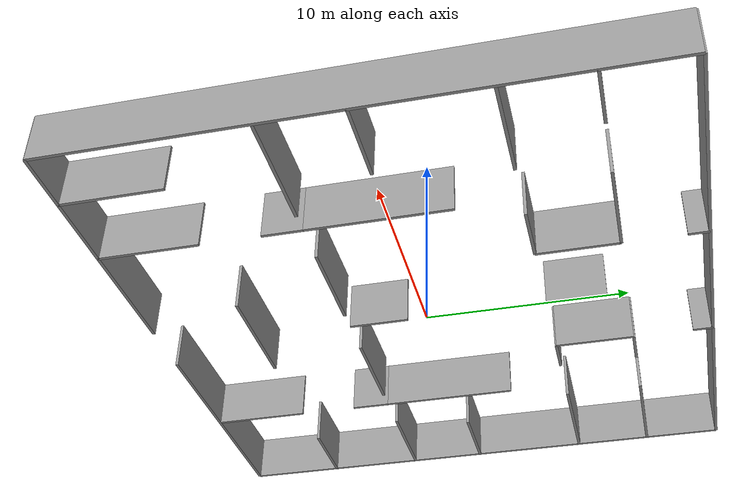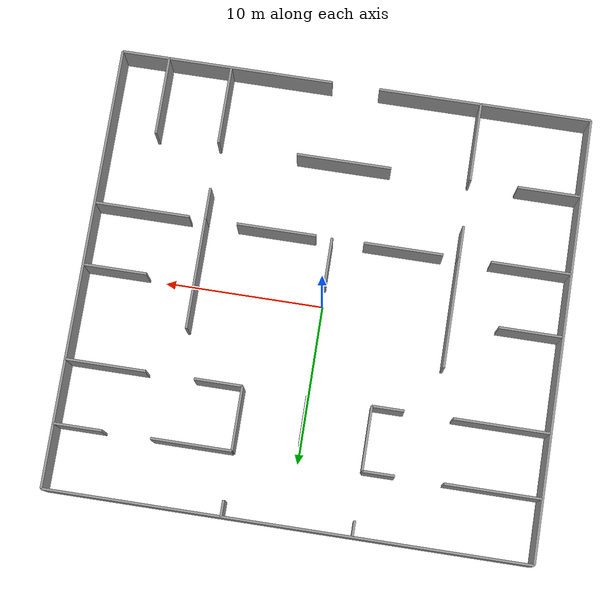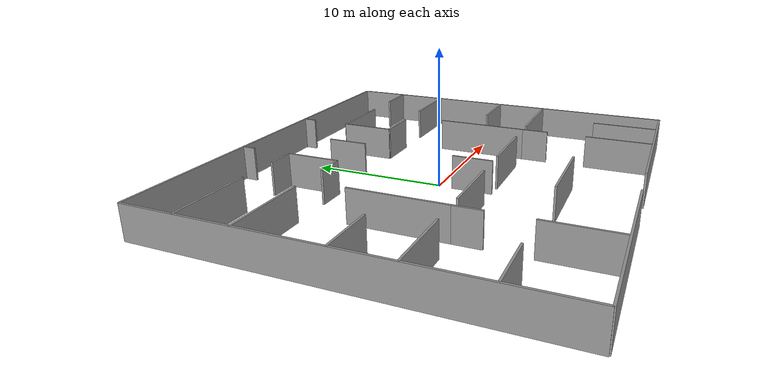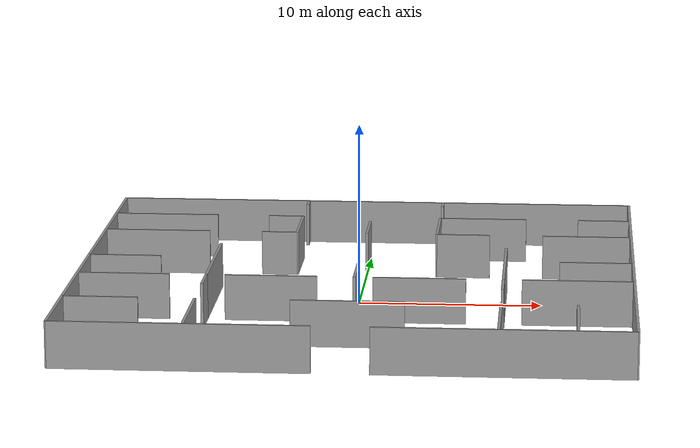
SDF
<?xml version='1.0'?>
<sdf version='1.11'>
  <model name='search_and_rescue_building'>
    <pose>0 0 0 0 0 0</pose>

    <!-- OUTER BOUNDARY WALLS                                         -->

    <link name='Wall_Out_N'>
      <collision name='Wall_Out_N_Collision'>
        <geometry>
          <box>
            <size>30 0.15 2.5</size>
          </box>
        </geometry>
        <pose>0 0 1.25 0 -0 0</pose>
      </collision>
      <visual name='Wall_Out_N_Visual'>
        <pose>0 0 1.25 0 -0 0</pose>
        <geometry>
          <box>
            <size>30 0.15 2.5</size>
          </box>
        </geometry>
        <material>
          <script>
            <uri>file://media/materials/scripts/gazebo.material</uri>
            <name>Gazebo/Grey</name>
          </script>
          <ambient>1 1 1 1</ambient>
        </material>
      </visual>
      <pose>0 14 0 0 -0 0</pose>
    </link>

    <!-- South outer wall, west of door: x=-15 to x=-1.5 (13.5 m) -->
    <link name='Wall_Out_S_W'>
      <collision name='Wall_Out_S_W_Collision'>
        <geometry>
          <box>
            <size>13.5 0.15 2.5</size>
          </box>
        </geometry>
        <pose>0 0 1.25 0 -0 0</pose>
      </collision>
      <visual name='Wall_Out_S_W_Visual'>
        <pose>0 0 1.25 0 -0 0</pose>
        <geometry>
          <box>
            <size>13.5 0.15 2.5</size>
          </box>
        </geometry>
        <material>
          <script>
            <uri>file://media/materials/scripts/gazebo.material</uri>
            <name>Gazebo/Grey</name>
          </script>
          <ambient>1 1 1 1</ambient>
        </material>
      </visual>
      <pose>-8.25 -14 0 0 -0 0</pose>
    </link>

    <!-- South outer wall, east of door: x=1.5 to x=15 (13.5 m) -->
    <link name='Wall_Out_S_E'>
      <collision name='Wall_Out_S_E_Collision'>
        <geometry>
          <box>
            <size>13.5 0.15 2.5</size>
          </box>
        </geometry>
        <pose>0 0 1.25 0 -0 0</pose>
      </collision>
      <visual name='Wall_Out_S_E_Visual'>
        <pose>0 0 1.25 0 -0 0</pose>
        <geometry>
          <box>
            <size>13.5 0.15 2.5</size>
          </box>
        </geometry>
        <material>
          <script>
            <uri>file://media/materials/scripts/gazebo.material</uri>
            <name>Gazebo/Grey</name>
          </script>
          <ambient>1 1 1 1</ambient>
        </material>
      </visual>
      <pose>8.25 -14 0 0 -0 0</pose>
    </link>

    <link name='Wall_Out_W'>
      <collision name='Wall_Out_W_Collision'>
        <geometry>
          <box>
            <size>28 0.15 2.5</size>
          </box>
        </geometry>
        <pose>0 0 1.25 0 -0 0</pose>
      </collision>
      <visual name='Wall_Out_W_Visual'>
        <pose>0 0 1.25 0 -0 0</pose>
        <geometry>
          <box>
            <size>28 0.15 2.5</size>
          </box>
        </geometry>
        <material>
          <script>
            <uri>file://media/materials/scripts/gazebo.material</uri>
            <name>Gazebo/Grey</name>
          </script>
          <ambient>1 1 1 1</ambient>
        </material>
      </visual>
      <pose>-15 0 0 0 -0 1.5708</pose>
    </link>

    <link name='Wall_Out_E'>
      <collision name='Wall_Out_E_Collision'>
        <geometry>
          <box>
            <size>28 0.15 2.5</size>
          </box>
        </geometry>
        <pose>0 0 1.25 0 -0 0</pose>
      </collision>
      <visual name='Wall_Out_E_Visual'>
        <pose>0 0 1.25 0 -0 0</pose>
        <geometry>
          <box>
            <size>28 0.15 2.5</size>
          </box>
        </geometry>
        <material>
          <script>
            <uri>file://media/materials/scripts/gazebo.material</uri>
            <name>Gazebo/Grey</name>
          </script>
          <ambient>1 1 1 1</ambient>
        </material>
      </visual>
      <pose>15 0 0 0 -0 1.5708</pose>
    </link>

    <!-- NORTH SECTION BOUNDARY (y=6 horizontal divider)              -->
    <!-- Rooms A and B are north of y=6; central atrium is south.     -->
    <!-- Gaps: x=-9 to x=-6 (Room A doorway), x=7 to x=10 (Room B)   -->
    <!-- Hallway (x=-4 to x=4) is open at y=6 (no wall).             -->

    <!-- Room A south wall, west segment: x=-15 to x=-9 (6 m) -->
    <link name='Wall_H6_RA_W'>
      <collision name='Wall_H6_RA_W_Collision'>
        <geometry>
          <box>
            <size>6 0.15 2.5</size>
          </box>
        </geometry>
        <pose>0 0 1.25 0 -0 0</pose>
      </collision>
      <visual name='Wall_H6_RA_W_Visual'>
        <pose>0 0 1.25 0 -0 0</pose>
        <geometry>
          <box>
            <size>6 0.15 2.5</size>
          </box>
        </geometry>
        <material>
          <script>
            <uri>file://media/materials/scripts/gazebo.material</uri>
            <name>Gazebo/Grey</name>
          </script>
          <ambient>1 1 1 1</ambient>
        </material>
      </visual>
      <pose>-12 6 0 0 -0 0</pose>
    </link>

    <!-- Room A south wall, east segment: x=-6 to x=-4 (2 m) -->
    <link name='Wall_H6_RA_E'>
      <collision name='Wall_H6_RA_E_Collision'>
        <geometry>
          <box>
            <size>2 0.15 2.5</size>
          </box>
        </geometry>
        <pose>0 0 1.25 0 -0 0</pose>
      </collision>
      <visual name='Wall_H6_RA_E_Visual'>
        <pose>0 0 1.25 0 -0 0</pose>
        <geometry>
          <box>
            <size>2 0.15 2.5</size>
          </box>
        </geometry>
        <material>
          <script>
            <uri>file://media/materials/scripts/gazebo.material</uri>
            <name>Gazebo/Grey</name>
          </script>
          <ambient>1 1 1 1</ambient>
        </material>
      </visual>
      <pose>-5 6 0 0 -0 0</pose>
    </link>

    <!-- Room B south wall, west segment: x=4 to x=7 (3 m) -->
    <link name='Wall_H6_RB_W'>
      <collision name='Wall_H6_RB_W_Collision'>
        <geometry>
          <box>
            <size>3 0.15 2.5</size>
          </box>
        </geometry>
        <pose>0 0 1.25 0 -0 0</pose>
      </collision>
      <visual name='Wall_H6_RB_W_Visual'>
        <pose>0 0 1.25 0 -0 0</pose>
        <geometry>
          <box>
            <size>3 0.15 2.5</size>
          </box>
        </geometry>
        <material>
          <script>
            <uri>file://media/materials/scripts/gazebo.material</uri>
            <name>Gazebo/Grey</name>
          </script>
          <ambient>1 1 1 1</ambient>
        </material>
      </visual>
      <pose>5.5 6 0 0 -0 0</pose>
    </link>

    <!-- Room B south wall, east segment: x=10 to x=15 (5 m) -->
    <link name='Wall_H6_RB_E'>
      <collision name='Wall_H6_RB_E_Collision'>
        <geometry>
          <box>
            <size>5 0.15 2.5</size>
          </box>
        </geometry>
        <pose>0 0 1.25 0 -0 0</pose>
      </collision>
      <visual name='Wall_H6_RB_E_Visual'>
        <pose>0 0 1.25 0 -0 0</pose>
        <geometry>
          <box>
            <size>5 0.15 2.5</size>
          </box>
        </geometry>
        <material>
          <script>
            <uri>file://media/materials/scripts/gazebo.material</uri>
            <name>Gazebo/Grey</name>
          </script>
          <ambient>1 1 1 1</ambient>
        </material>
      </visual>
      <pose>12.5 6 0 0 -0 0</pose>
    </link>

    <!-- VERTICAL DIVIDERS: Room A / Hallway (x=-4)                   -->
    <!-- and Hallway / Room B (x=4)                                   -->
    <!-- Door gap on each: y=10 to y=13 (3 m doorway)                -->

    <!-- x=-4 divider, bottom: y=6 to y=10 (4 m) -->
    <link name='Wall_V_neg4_bot'>
      <collision name='Wall_V_neg4_bot_Collision'>
        <geometry>
          <box>
            <size>4 0.15 2.5</size>
          </box>
        </geometry>
        <pose>0 0 1.25 0 -0 0</pose>
      </collision>
      <visual name='Wall_V_neg4_bot_Visual'>
        <pose>0 0 1.25 0 -0 0</pose>
        <geometry>
          <box>
            <size>4 0.15 2.5</size>
          </box>
        </geometry>
        <material>
          <script>
            <uri>file://media/materials/scripts/gazebo.material</uri>
            <name>Gazebo/Grey</name>
          </script>
          <ambient>1 1 1 1</ambient>
        </material>
      </visual>
      <pose>-4 8 0 0 -0 1.5708</pose>
    </link>

    <!-- x=-4 divider, top: y=13 to y=14 (1 m) -->
    <link name='Wall_V_neg4_top'>
      <collision name='Wall_V_neg4_top_Collision'>
        <geometry>
          <box>
            <size>1 0.15 2.5</size>
          </box>
        </geometry>
        <pose>0 0 1.25 0 -0 0</pose>
      </collision>
      <visual name='Wall_V_neg4_top_Visual'>
        <pose>0 0 1.25 0 -0 0</pose>
        <geometry>
          <box>
            <size>1 0.15 2.5</size>
          </box>
        </geometry>
        <material>
          <script>
            <uri>file://media/materials/scripts/gazebo.material</uri>
            <name>Gazebo/Grey</name>
          </script>
          <ambient>1 1 1 1</ambient>
        </material>
      </visual>
      <pose>-4 13.5 0 0 -0 1.5708</pose>
    </link>

    <!-- x=4 divider, bottom: y=6 to y=10 (4 m) -->
    <link name='Wall_V_4_bot'>
      <collision name='Wall_V_4_bot_Collision'>
        <geometry>
          <box>
            <size>4 0.15 2.5</size>
          </box>
        </geometry>
        <pose>0 0 1.25 0 -0 0</pose>
      </collision>
      <visual name='Wall_V_4_bot_Visual'>
        <pose>0 0 1.25 0 -0 0</pose>
        <geometry>
          <box>
            <size>4 0.15 2.5</size>
          </box>
        </geometry>
        <material>
          <script>
            <uri>file://media/materials/scripts/gazebo.material</uri>
            <name>Gazebo/Grey</name>
          </script>
          <ambient>1 1 1 1</ambient>
        </material>
      </visual>
      <pose>4 8 0 0 -0 1.5708</pose>
    </link>

    <!-- x=4 divider, top: y=13 to y=14 (1 m) -->
    <link name='Wall_V_4_top'>
      <collision name='Wall_V_4_top_Collision'>
        <geometry>
          <box>
            <size>1 0.15 2.5</size>
          </box>
        </geometry>
        <pose>0 0 1.25 0 -0 0</pose>
      </collision>
      <visual name='Wall_V_4_top_Visual'>
        <pose>0 0 1.25 0 -0 0</pose>
        <geometry>
          <box>
            <size>1 0.15 2.5</size>
          </box>
        </geometry>
        <material>
          <script>
            <uri>file://media/materials/scripts/gazebo.material</uri>
            <name>Gazebo/Grey</name>
          </script>
          <ambient>1 1 1 1</ambient>
        </material>
      </visual>
      <pose>4 13.5 0 0 -0 1.5708</pose>
    </link>

    <!-- ROOM A INTERNAL WALLS (Large Entry Hall, NW)                 -->
    <!-- Horizontal divider at y=10 with gap x=-9 to x=-6            -->
    <!-- Forces an L-shaped navigation path inside Room A             -->

    <!-- Room A internal, west segment: y=10, x=-15 to x=-9 (6 m) -->
    <link name='Wall_RA_1_W'>
      <collision name='Wall_RA_1_W_Collision'>
        <geometry>
          <box>
            <size>6 0.15 2.5</size>
          </box>
        </geometry>
        <pose>0 0 1.25 0 -0 0</pose>
      </collision>
      <visual name='Wall_RA_1_W_Visual'>
        <pose>0 0 1.25 0 -0 0</pose>
        <geometry>
          <box>
            <size>6 0.15 2.5</size>
          </box>
        </geometry>
        <material>
          <script>
            <uri>file://media/materials/scripts/gazebo.material</uri>
            <name>Gazebo/Grey</name>
          </script>
          <ambient>1 1 1 1</ambient>
        </material>
      </visual>
      <pose>-12 10 0 0 -0 0</pose>
    </link>

    <!-- Room A internal, east segment: y=10, x=-6 to x=-4 (2 m) -->
    <link name='Wall_RA_1_E'>
      <collision name='Wall_RA_1_E_Collision'>
        <geometry>
          <box>
            <size>2 0.15 2.5</size>
          </box>
        </geometry>
        <pose>0 0 1.25 0 -0 0</pose>
      </collision>
      <visual name='Wall_RA_1_E_Visual'>
        <pose>0 0 1.25 0 -0 0</pose>
        <geometry>
          <box>
            <size>2 0.15 2.5</size>
          </box>
        </geometry>
        <material>
          <script>
            <uri>file://media/materials/scripts/gazebo.material</uri>
            <name>Gazebo/Grey</name>
          </script>
          <ambient>1 1 1 1</ambient>
        </material>
      </visual>
      <pose>-5 10 0 0 -0 0</pose>
    </link>

    <!-- ROOM B INTERNAL WALLS (Medium Office, NE)                    -->
    <!-- Horizontal divider at y=10 with gap x=9 to x=12             -->

    <!-- Room B internal, west segment: y=10, x=4 to x=9 (5 m) -->
    <link name='Wall_RB_1_W'>
      <collision name='Wall_RB_1_W_Collision'>
        <geometry>
          <box>
            <size>5 0.15 2.5</size>
          </box>
        </geometry>
        <pose>0 0 1.25 0 -0 0</pose>
      </collision>
      <visual name='Wall_RB_1_W_Visual'>
        <pose>0 0 1.25 0 -0 0</pose>
        <geometry>
          <box>
            <size>5 0.15 2.5</size>
          </box>
        </geometry>
        <material>
          <script>
            <uri>file://media/materials/scripts/gazebo.material</uri>
            <name>Gazebo/Grey</name>
          </script>
          <ambient>1 1 1 1</ambient>
        </material>
      </visual>
      <pose>6.5 10 0 0 -0 0</pose>
    </link>

    <!-- Room B internal, east segment: y=10, x=12 to x=15 (3 m) -->
    <link name='Wall_RB_1_E'>
      <collision name='Wall_RB_1_E_Collision'>
        <geometry>
          <box>
            <size>3 0.15 2.5</size>
          </box>
        </geometry>
        <pose>0 0 1.25 0 -0 0</pose>
      </collision>
      <visual name='Wall_RB_1_E_Visual'>
        <pose>0 0 1.25 0 -0 0</pose>
        <geometry>
          <box>
            <size>3 0.15 2.5</size>
          </box>
        </geometry>
        <material>
          <script>
            <uri>file://media/materials/scripts/gazebo.material</uri>
            <name>Gazebo/Grey</name>
          </script>
          <ambient>1 1 1 1</ambient>
        </material>
      </visual>
      <pose>13.5 10 0 0 -0 0</pose>
    </link>

    <!-- NORTH HALLWAY INTERNAL WALL                                  -->
    <!-- Vertical stub at x=0, y=6 to y=9 (3 m)                      -->
    <!-- Forces the robot to choose left or right in the hallway      -->

    <link name='Wall_Hall_1'>
      <collision name='Wall_Hall_1_Collision'>
        <geometry>
          <box>
            <size>3 0.15 2.5</size>
          </box>
        </geometry>
        <pose>0 0 1.25 0 -0 0</pose>
      </collision>
      <visual name='Wall_Hall_1_Visual'>
        <pose>0 0 1.25 0 -0 0</pose>
        <geometry>
          <box>
            <size>3 0.15 2.5</size>
          </box>
        </geometry>
        <material>
          <script>
            <uri>file://media/materials/scripts/gazebo.material</uri>
            <name>Gazebo/Grey</name>
          </script>
          <ambient>1 1 1 1</ambient>
        </material>
      </visual>
      <pose>0 7.5 0 0 -0 1.5708</pose>
    </link>

    <!-- CENTRAL / SOUTH BOUNDARY (y=-4 horizontal divider)           -->
    <!-- Separates large central atrium from south rooms.             -->
    <!-- Gaps (doorways): x=-10 to x=-7, x=-2 to x=1, x=6 to x=9   -->

    <!-- Segment 1: x=-15 to x=-10 (5 m) -->
    <link name='Wall_H_neg4_1'>
      <collision name='Wall_H_neg4_1_Collision'>
        <geometry>
          <box>
            <size>5 0.15 2.5</size>
          </box>
        </geometry>
        <pose>0 0 1.25 0 -0 0</pose>
      </collision>
      <visual name='Wall_H_neg4_1_Visual'>
        <pose>0 0 1.25 0 -0 0</pose>
        <geometry>
          <box>
            <size>5 0.15 2.5</size>
          </box>
        </geometry>
        <material>
          <script>
            <uri>file://media/materials/scripts/gazebo.material</uri>
            <name>Gazebo/Grey</name>
          </script>
          <ambient>1 1 1 1</ambient>
        </material>
      </visual>
      <pose>-12.5 -4 0 0 -0 0</pose>
    </link>

    <!-- Segment 2: x=-7 to x=-2 (5 m) -->
    <link name='Wall_H_neg4_2'>
      <collision name='Wall_H_neg4_2_Collision'>
        <geometry>
          <box>
            <size>5 0.15 2.5</size>
          </box>
        </geometry>
        <pose>0 0 1.25 0 -0 0</pose>
      </collision>
      <visual name='Wall_H_neg4_2_Visual'>
        <pose>0 0 1.25 0 -0 0</pose>
        <geometry>
          <box>
            <size>5 0.15 2.5</size>
          </box>
        </geometry>
        <material>
          <script>
            <uri>file://media/materials/scripts/gazebo.material</uri>
            <name>Gazebo/Grey</name>
          </script>
          <ambient>1 1 1 1</ambient>
        </material>
      </visual>
      <pose>-4.5 -4 0 0 -0 0</pose>
    </link>

    <!-- Segment 3: x=1 to x=6 (5 m) -->
    <link name='Wall_H_neg4_3'>
      <collision name='Wall_H_neg4_3_Collision'>
        <geometry>
          <box>
            <size>5 0.15 2.5</size>
          </box>
        </geometry>
        <pose>0 0 1.25 0 -0 0</pose>
      </collision>
      <visual name='Wall_H_neg4_3_Visual'>
        <pose>0 0 1.25 0 -0 0</pose>
        <geometry>
          <box>
            <size>5 0.15 2.5</size>
          </box>
        </geometry>
        <material>
          <script>
            <uri>file://media/materials/scripts/gazebo.material</uri>
            <name>Gazebo/Grey</name>
          </script>
          <ambient>1 1 1 1</ambient>
        </material>
      </visual>
      <pose>3.5 -4 0 0 -0 0</pose>
    </link>

    <!-- Segment 4: x=9 to x=15 (6 m) -->
    <link name='Wall_H_neg4_4'>
      <collision name='Wall_H_neg4_4_Collision'>
        <geometry>
          <box>
            <size>6 0.15 2.5</size>
          </box>
        </geometry>
        <pose>0 0 1.25 0 -0 0</pose>
      </collision>
      <visual name='Wall_H_neg4_4_Visual'>
        <pose>0 0 1.25 0 -0 0</pose>
        <geometry>
          <box>
            <size>6 0.15 2.5</size>
          </box>
        </geometry>
        <material>
          <script>
            <uri>file://media/materials/scripts/gazebo.material</uri>
            <name>Gazebo/Grey</name>
          </script>
          <ambient>1 1 1 1</ambient>
        </material>
      </visual>
      <pose>12 -4 0 0 -0 0</pose>
    </link>

    <!-- CENTRAL ATRIUM INTERNAL WALLS                                -->
    <!-- Two vertical walls at x=-8 and x=8 divide the atrium into   -->
    <!-- a wide central space and two narrow side alcoves.            -->
    <!-- Each vertical wall runs y=-4 to y=3 with a 3 m gap (y=3-6). -->
    <!-- Horizontal stubs create dead-end alcoves on west and east.   -->
    <!-- A short central vertical stub forces a path split.           -->

    <!-- West internal vertical wall: x=-8, y=-4 to y=3 (7 m) -->
    <link name='Wall_CA_W_vert'>
      <collision name='Wall_CA_W_vert_Collision'>
        <geometry>
          <box>
            <size>7 0.15 2.5</size>
          </box>
        </geometry>
        <pose>0 0 1.25 0 -0 0</pose>
      </collision>
      <visual name='Wall_CA_W_vert_Visual'>
        <pose>0 0 1.25 0 -0 0</pose>
        <geometry>
          <box>
            <size>7 0.15 2.5</size>
          </box>
        </geometry>
        <material>
          <script>
            <uri>file://media/materials/scripts/gazebo.material</uri>
            <name>Gazebo/Grey</name>
          </script>
          <ambient>1 1 1 1</ambient>
        </material>
      </visual>
      <pose>-8 -0.5 0 0 -0 1.5708</pose>
    </link>

    <!-- East internal vertical wall: x=8, y=-4 to y=3 (7 m) -->
    <link name='Wall_CA_E_vert'>
      <collision name='Wall_CA_E_vert_Collision'>
        <geometry>
          <box>
            <size>7 0.15 2.5</size>
          </box>
        </geometry>
        <pose>0 0 1.25 0 -0 0</pose>
      </collision>
      <visual name='Wall_CA_E_vert_Visual'>
        <pose>0 0 1.25 0 -0 0</pose>
        <geometry>
          <box>
            <size>7 0.15 2.5</size>
          </box>
        </geometry>
        <material>
          <script>
            <uri>file://media/materials/scripts/gazebo.material</uri>
            <name>Gazebo/Grey</name>
          </script>
          <ambient>1 1 1 1</ambient>
        </material>
      </visual>
      <pose>8 -0.5 0 0 -0 1.5708</pose>
    </link>

    <!-- West alcove horizontal wall: y=0, x=-15 to x=-11 (4 m) -->
    <!-- Dead end in the western side alcove -->
    <link name='Wall_CA_SubW_H'>
      <collision name='Wall_CA_SubW_H_Collision'>
        <geometry>
          <box>
            <size>4 0.15 2.5</size>
          </box>
        </geometry>
        <pose>0 0 1.25 0 -0 0</pose>
      </collision>
      <visual name='Wall_CA_SubW_H_Visual'>
        <pose>0 0 1.25 0 -0 0</pose>
        <geometry>
          <box>
            <size>4 0.15 2.5</size>
          </box>
        </geometry>
        <material>
          <script>
            <uri>file://media/materials/scripts/gazebo.material</uri>
            <name>Gazebo/Grey</name>
          </script>
          <ambient>1 1 1 1</ambient>
        </material>
      </visual>
      <pose>-13 0 0 0 -0 0</pose>
    </link>

    <!-- East alcove horizontal wall: y=0, x=11 to x=15 (4 m) -->
    <!-- Dead end in the eastern side alcove -->
    <link name='Wall_CA_SubE_H'>
      <collision name='Wall_CA_SubE_H_Collision'>
        <geometry>
          <box>
            <size>4 0.15 2.5</size>
          </box>
        </geometry>
        <pose>0 0 1.25 0 -0 0</pose>
      </collision>
      <visual name='Wall_CA_SubE_H_Visual'>
        <pose>0 0 1.25 0 -0 0</pose>
        <geometry>
          <box>
            <size>4 0.15 2.5</size>
          </box>
        </geometry>
        <material>
          <script>
            <uri>file://media/materials/scripts/gazebo.material</uri>
            <name>Gazebo/Grey</name>
          </script>
          <ambient>1 1 1 1</ambient>
        </material>
      </visual>
      <pose>13 0 0 0 -0 0</pose>
    </link>

    <!-- Central atrium vertical stub: x=0, y=-4 to y=-1 (3 m) -->
    <!-- Splits the lower atrium into two lanes -->
    <link name='Wall_CA_Center_V'>
      <collision name='Wall_CA_Center_V_Collision'>
        <geometry>
          <box>
            <size>3 0.15 2.5</size>
          </box>
        </geometry>
        <pose>0 0 1.25 0 -0 0</pose>
      </collision>
      <visual name='Wall_CA_Center_V_Visual'>
        <pose>0 0 1.25 0 -0 0</pose>
        <geometry>
          <box>
            <size>3 0.15 2.5</size>
          </box>
        </geometry>
        <material>
          <script>
            <uri>file://media/materials/scripts/gazebo.material</uri>
            <name>Gazebo/Grey</name>
          </script>
          <ambient>1 1 1 1</ambient>
        </material>
      </visual>
      <pose>0 -2.5 0 0 -0 1.5708</pose>
    </link>

    <!-- SOUTH SECTION VERTICAL DIVIDERS (x=-8 and x=8)              -->
    <!-- Room C (SW) | Bottom Corridor | Room E (SE)                  -->
    <!-- Each divider has a 3 m gap from y=-9 to y=-6 (doorway)       -->

    <!-- x=-8 south divider, bottom: y=-14 to y=-9 (5 m) -->
    <link name='Wall_Vs_neg8_bot'>
      <collision name='Wall_Vs_neg8_bot_Collision'>
        <geometry>
          <box>
            <size>5 0.15 2.5</size>
          </box>
        </geometry>
        <pose>0 0 1.25 0 -0 0</pose>
      </collision>
      <visual name='Wall_Vs_neg8_bot_Visual'>
        <pose>0 0 1.25 0 -0 0</pose>
        <geometry>
          <box>
            <size>5 0.15 2.5</size>
          </box>
        </geometry>
        <material>
          <script>
            <uri>file://media/materials/scripts/gazebo.material</uri>
            <name>Gazebo/Grey</name>
          </script>
          <ambient>1 1 1 1</ambient>
        </material>
      </visual>
      <pose>-8 -11.5 0 0 -0 1.5708</pose>
    </link>

    <!-- x=-8 south divider, top: y=-6 to y=-4 (2 m) -->
    <link name='Wall_Vs_neg8_top'>
      <collision name='Wall_Vs_neg8_top_Collision'>
        <geometry>
          <box>
            <size>2 0.15 2.5</size>
          </box>
        </geometry>
        <pose>0 0 1.25 0 -0 0</pose>
      </collision>
      <visual name='Wall_Vs_neg8_top_Visual'>
        <pose>0 0 1.25 0 -0 0</pose>
        <geometry>
          <box>
            <size>2 0.15 2.5</size>
          </box>
        </geometry>
        <material>
          <script>
            <uri>file://media/materials/scripts/gazebo.material</uri>
            <name>Gazebo/Grey</name>
          </script>
          <ambient>1 1 1 1</ambient>
        </material>
      </visual>
      <pose>-8 -5 0 0 -0 1.5708</pose>
    </link>

    <!-- x=8 south divider, bottom: y=-14 to y=-9 (5 m) -->
    <link name='Wall_Vs_8_bot'>
      <collision name='Wall_Vs_8_bot_Collision'>
        <geometry>
          <box>
            <size>5 0.15 2.5</size>
          </box>
        </geometry>
        <pose>0 0 1.25 0 -0 0</pose>
      </collision>
      <visual name='Wall_Vs_8_bot_Visual'>
        <pose>0 0 1.25 0 -0 0</pose>
        <geometry>
          <box>
            <size>5 0.15 2.5</size>
          </box>
        </geometry>
        <material>
          <script>
            <uri>file://media/materials/scripts/gazebo.material</uri>
            <name>Gazebo/Grey</name>
          </script>
          <ambient>1 1 1 1</ambient>
        </material>
      </visual>
      <pose>8 -11.5 0 0 -0 1.5708</pose>
    </link>

    <!-- x=8 south divider, top: y=-6 to y=-4 (2 m) -->
    <link name='Wall_Vs_8_top'>
      <collision name='Wall_Vs_8_top_Collision'>
        <geometry>
          <box>
            <size>2 0.15 2.5</size>
          </box>
        </geometry>
        <pose>0 0 1.25 0 -0 0</pose>
      </collision>
      <visual name='Wall_Vs_8_top_Visual'>
        <pose>0 0 1.25 0 -0 0</pose>
        <geometry>
          <box>
            <size>2 0.15 2.5</size>
          </box>
        </geometry>
        <material>
          <script>
            <uri>file://media/materials/scripts/gazebo.material</uri>
            <name>Gazebo/Grey</name>
          </script>
          <ambient>1 1 1 1</ambient>
        </material>
      </visual>
      <pose>8 -5 0 0 -0 1.5708</pose>
    </link>

    <!-- SOUTH ROOM INTERNAL WALLS                                    -->

    <!-- Room C (SW, Small Storage) internal wall                     -->
    <!-- Horizontal at y=-9, x=-15 to x=-11 (4 m)                   -->
    <!-- Creates an L-shaped dead-end nook in the SW corner           -->
    <link name='Wall_RC_1'>
      <collision name='Wall_RC_1_Collision'>
        <geometry>
          <box>
            <size>4 0.15 2.5</size>
          </box>
        </geometry>
        <pose>0 0 1.25 0 -0 0</pose>
      </collision>
      <visual name='Wall_RC_1_Visual'>
        <pose>0 0 1.25 0 -0 0</pose>
        <geometry>
          <box>
            <size>4 0.15 2.5</size>
          </box>
        </geometry>
        <material>
          <script>
            <uri>file://media/materials/scripts/gazebo.material</uri>
            <name>Gazebo/Grey</name>
          </script>
          <ambient>1 1 1 1</ambient>
        </material>
      </visual>
      <pose>-13 -9 0 0 -0 0</pose>
    </link>

    <!-- Bottom Corridor internal wall                                -->
    <!-- Horizontal at y=-9, x=-3 to x=3 (6 m)                      -->
    <!-- Forces robot to navigate around it (U-shaped path)          -->
    <link name='Wall_BC_1'>
      <collision name='Wall_BC_1_Collision'>
        <geometry>
          <box>
            <size>6 0.15 2.5</size>
          </box>
        </geometry>
        <pose>0 0 1.25 0 -0 0</pose>
      </collision>
      <visual name='Wall_BC_1_Visual'>
        <pose>0 0 1.25 0 -0 0</pose>
        <geometry>
          <box>
            <size>6 0.15 2.5</size>
          </box>
        </geometry>
        <material>
          <script>
            <uri>file://media/materials/scripts/gazebo.material</uri>
            <name>Gazebo/Grey</name>
          </script>
          <ambient>1 1 1 1</ambient>
        </material>
      </visual>
      <pose>0 -9 0 0 -0 0</pose>
    </link>

    <!-- Room E (SE, Medium Lab) internal wall                        -->
    <!-- Vertical at x=12, y=-14 to y=-9 (5 m)                      -->
    <!-- Creates a sub-room in the SE corner                          -->
    <link name='Wall_RE_1'>
      <collision name='Wall_RE_1_Collision'>
        <geometry>
          <box>
            <size>5 0.15 2.5</size>
          </box>
        </geometry>
        <pose>0 0 1.25 0 -0 0</pose>
      </collision>
      <visual name='Wall_RE_1_Visual'>
        <pose>0 0 1.25 0 -0 0</pose>
        <geometry>
          <box>
            <size>5 0.15 2.5</size>
          </box>
        </geometry>
        <material>
          <script>
            <uri>file://media/materials/scripts/gazebo.material</uri>
            <name>Gazebo/Grey</name>
          </script>
          <ambient>1 1 1 1</ambient>
        </material>
      </visual>
      <pose>12 -11.5 0 0 -0 1.5708</pose>
    </link>

    <static>1</static>
  </model>
</sdf>
